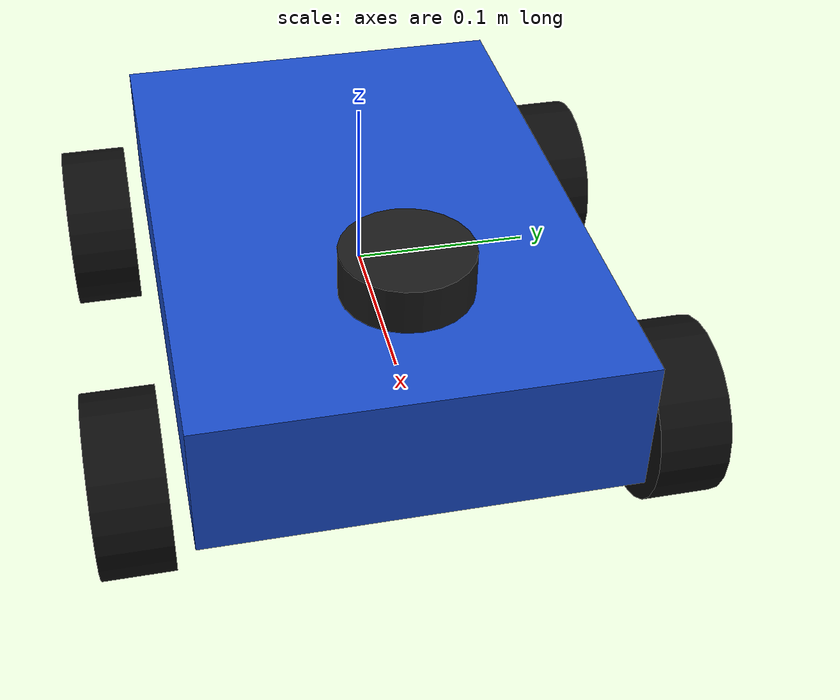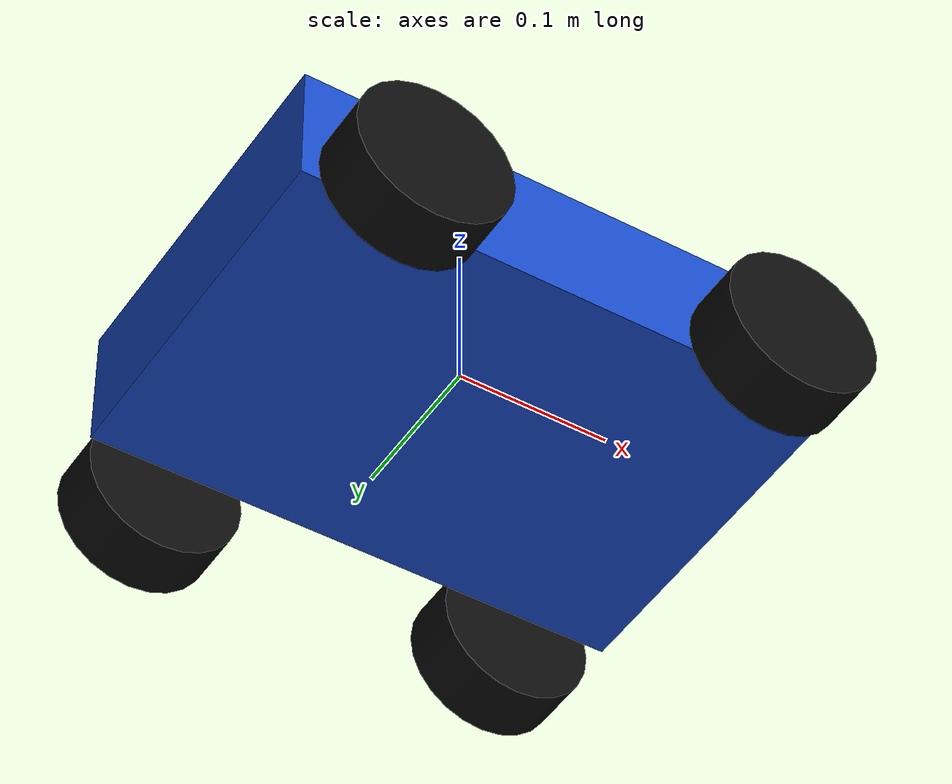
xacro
<?xml version="1.0"?>

<robot name="carro" xmlns:xacro="http://www.ros.org/wiki/xacro">

    <!-- PARÂMETROS GERAIS DO CARRO                       -->

    <!-- Chassi -->
    <xacro:property name="chassis_length" value="0.35"/>
    <xacro:property name="chassis_width"  value="0.24"/>
    <xacro:property name="chassis_height" value="0.08"/>
    <xacro:property name="chassis_mass"   value="2.0"/>

    <!-- Rodas -->
    <xacro:property name="wheel_radius" value="0.05"/>
    <xacro:property name="wheel_width"  value="0.04"/>
    <xacro:property name="wheel_mass"   value="0.10"/>

    <!-- Geometria do veículo -->
    <xacro:property name="wheel_base" value="0.24"/>
    <xacro:property name="track_width" value="0.30"/>

    <!-- Limites mecânicos -->
    <xacro:property name="max_wheel_speed" value="20.0"/>
    <xacro:property name="max_wheel_effort" value="10.0"/>

    <!-- CHASSI                                           -->

    <link name="base_link">

        <visual>
            <geometry>
                <box size="${chassis_length} ${chassis_width} ${chassis_height}"/>
            </geometry>

            <material name="blue">
                <color rgba="0.1 0.3 0.8 1.0"/>
            </material>
        </visual>

        <collision>
            <geometry>
                <box size="${chassis_length} ${chassis_width} ${chassis_height}"/>
            </geometry>
        </collision>

        <inertial>
            <mass value="${chassis_mass}"/>

            <inertia
                ixx="${chassis_mass * (chassis_width*chassis_width + chassis_height*chassis_height) / 12.0}"
                ixy="0.0"
                ixz="0.0"
                iyy="${chassis_mass * (chassis_length*chassis_length + chassis_height*chassis_height) / 12.0}"
                iyz="0.0"
                izz="${chassis_mass * (chassis_length*chassis_length + chassis_width*chassis_width) / 12.0}"/>
        </inertial>

    </link>

    <!-- MACRO PARA CRIAR UMA RODA                        -->

    <xacro:macro name="wheel" params="name x y">

        <link name="${name}_link">

            <visual>
                <origin xyz="0 0 0" rpy="${pi/2} 0 0"/>

                <geometry>
                    <cylinder
                        radius="${wheel_radius}"
                        length="${wheel_width}"/>
                </geometry>

                <material name="black">
                    <color rgba="0.05 0.05 0.05 1.0"/>
                </material>
            </visual>

            <collision>
                <origin xyz="0 0 0" rpy="${pi/2} 0 0"/>

                <geometry>
                    <cylinder
                        radius="${wheel_radius}"
                        length="${wheel_width}"/>
                </geometry>
            </collision>

            <inertial>
                <mass value="${wheel_mass}"/>

                <inertia
                    ixx="${wheel_mass * (3*wheel_radius*wheel_radius + wheel_width*wheel_width)/12.0}"
                    ixy="0"
                    ixz="0"
                    iyy="${wheel_mass * wheel_radius*wheel_radius/2.0}"
                    iyz="0"
                    izz="${wheel_mass * (3*wheel_radius*wheel_radius + wheel_width*wheel_width)/12.0}"/>
            </inertial>

        </link>

        <joint name="${name}_joint" type="continuous">

            <parent link="base_link"/>
            <child link="${name}_link"/>

            <origin
                xyz="${x} ${y} ${-chassis_height/2}"
                rpy="0 0 0"/>

            <axis xyz="0 1 0"/>

            <limit
                effort="${max_wheel_effort}"
                velocity="${max_wheel_speed}"/>

            <dynamics
                damping="0.02"
                friction="0.0"/>

        </joint>

    </xacro:macro>

    <!-- QUATRO RODAS                                     -->

    <xacro:wheel
        name="front_left_wheel"
        x="${wheel_base/2}"
        y="${track_width/2}"/>

    <xacro:wheel
        name="rear_left_wheel"
        x="${-wheel_base/2}"
        y="${track_width/2}"/>

    <xacro:wheel
        name="front_right_wheel"
        x="${wheel_base/2}"
        y="${-track_width/2}"/>

    <xacro:wheel
        name="rear_right_wheel"
        x="${-wheel_base/2}"
        y="${-track_width/2}"/>
<!-- LIDAR                                            -->

<link name="lidar_link">

    <visual>
        <geometry>
            <cylinder
                radius="0.035"
                length="0.025"/>
        </geometry>

        <material name="lidar_black">
            <color rgba="0.1 0.1 0.1 1.0"/>
        </material>
    </visual>

</link>

<joint name="lidar_joint" type="fixed">

    <parent link="base_link"/>
    <child link="lidar_link"/>

    <!-- x y z roll pitch yaw -->
    <origin
        xyz="0.12 0 0.08"
        rpy="0 0 0"/>

</joint>

    <!-- ROS 2 CONTROL                                    -->

    <ros2_control name="GazeboSimSystem" type="system">

        <hardware>
            <plugin>gz_ros2_control/GazeboSimSystem</plugin>
        </hardware>

        <joint name="front_left_wheel_joint">

            <command_interface name="velocity"/>

            <state_interface name="position"/>
            <state_interface name="velocity"/>

        </joint>

        <joint name="rear_left_wheel_joint">

            <command_interface name="velocity"/>

            <state_interface name="position"/>
            <state_interface name="velocity"/>

        </joint>

        <joint name="front_right_wheel_joint">

            <command_interface name="velocity"/>

            <state_interface name="position"/>
            <state_interface name="velocity"/>

        </joint>

        <joint name="rear_right_wheel_joint">

            <command_interface name="velocity"/>

            <state_interface name="position"/>
            <state_interface name="velocity"/>

        </joint>

    </ros2_control>

    <!-- GAZEBO + ROS2 CONTROL                            -->

    <gazebo>

        <plugin
            filename="libgz_ros2_control-system.so"
            name="gz_ros2_control::GazeboSimROS2ControlPlugin">

            <parameters>
                $(find carro_sim)/config/controllers.yaml
            </parameters>

        </plugin>

    </gazebo>

<gazebo reference="lidar_link">

    <sensor
        name="lidar_sensor"
        type="gpu_lidar">
        <gz_frame_id>lidar_link</gz_frame_id>
        <topic>scan</topic>

        <update_rate>10</update_rate>

        <always_on>true</always_on>

        <visualize>true</visualize>

        <ray>

            <scan>

                <horizontal>

                    <samples>360</samples>

                    <resolution>1</resolution>

                    <min_angle>-3.14159</min_angle>

                    <max_angle>3.14159</max_angle>

                </horizontal>

                <vertical>

                    <samples>1</samples>

                    <resolution>1</resolution>

                    <min_angle>0</min_angle>

                    <max_angle>0</max_angle>

                </vertical>

            </scan>

            <range>

                <min>0.08</min>

                <max>8.0</max>

                <resolution>0.01</resolution>

            </range>

        </ray>

    </sensor>

</gazebo>

</robot>
